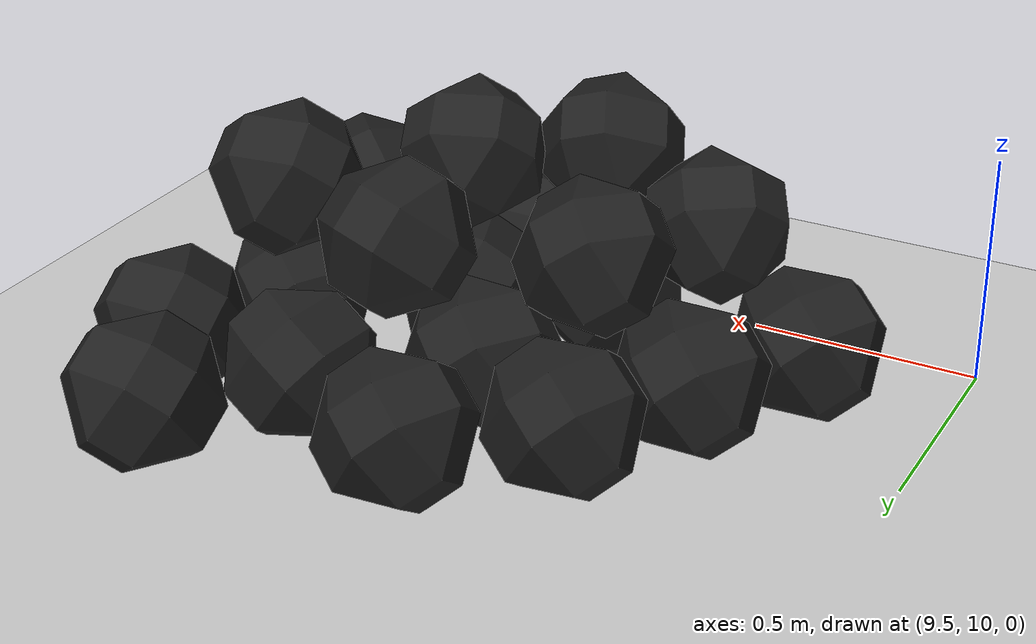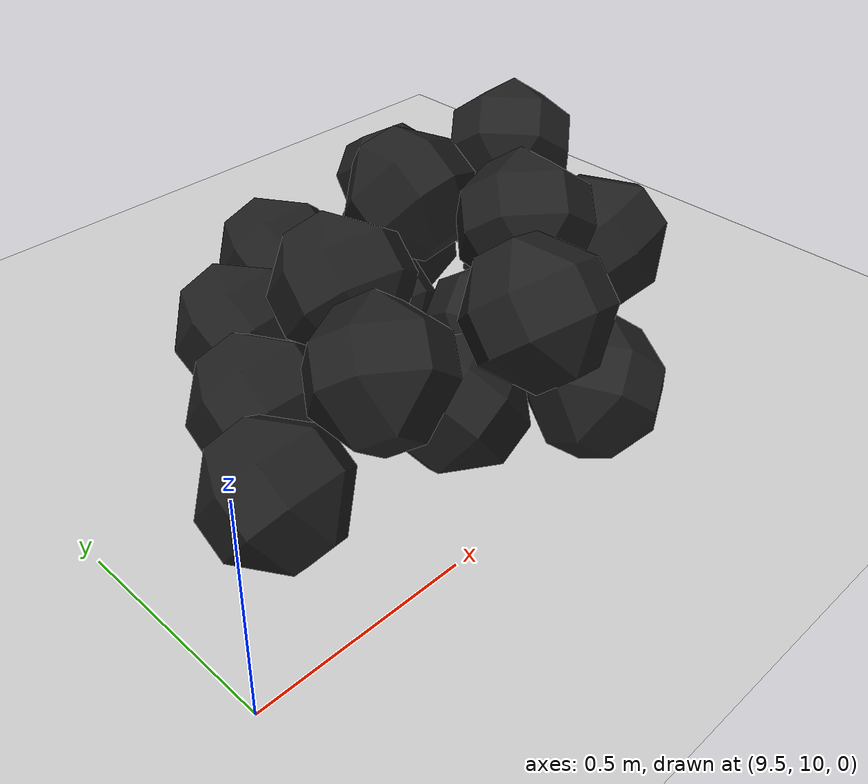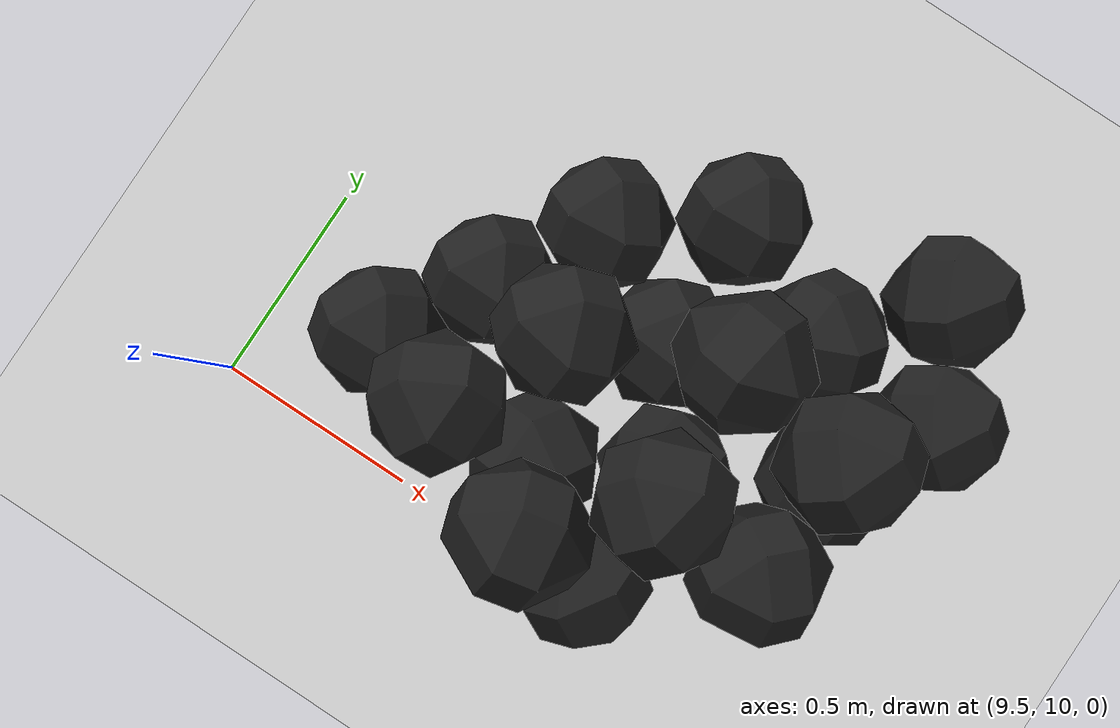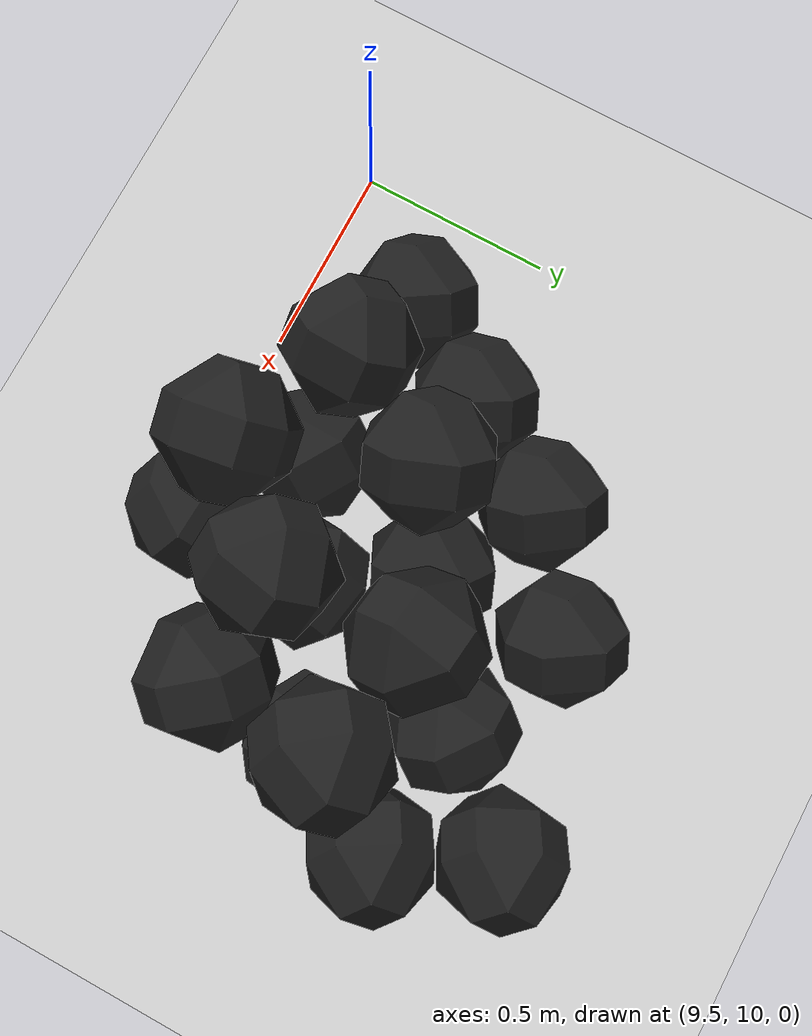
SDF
<sdf version="1.7">
 <world name="default">
  <model name="ground_plane">
   <static>1</static>
   <link name="link">
    <collision name="collision">
     <geometry><plane><normal>0 0 1</normal><size>100 100</size></plane></geometry>
     <surface><friction><ode><mu>100</mu><mu2>50</mu2></ode></friction></surface>
    </collision>
    <visual name="visual">
     <cast_shadows>0</cast_shadows>
     <geometry><plane><normal>0 0 1</normal><size>100 100</size></plane></geometry>
     <material>
      <script><uri>file://media/materials/scripts/gazebo.material</uri><name>Gazebo/Grey</name></script>
     </material>
    </visual>
   </link>
  </model>
  <model name="haoduomiantiaa_0">
   <link name="link_0">
    <inertial>
     <mass>0.2</mass>
     <inertia>
      <ixx>0.166667</ixx>
      <ixy>0</ixy>
      <ixz>0</ixz>
      <iyy>0.166667</iyy>
      <iyz>0</iyz>
      <izz>0.166667</izz>
     </inertia>
    </inertial>
    <visual name="visual">
     <geometry>
      <mesh>
       <uri>/home/lihaoyang/catkin_ws/src/pudong_gazebo/world/stl/haoduomianti.stl</uri>
       <scale>1 1 1</scale>
      </mesh>
     </geometry>
     <material>
      <lighting>1</lighting>
      <script><uri>file://media/materials/scripts/gazebo.material</uri><name>Gazebo/Black</name></script>
      <shader type="pixel"><normal_map>__default__</normal_map></shader>
      <ambient>0.3 0.3 0.3 1</ambient>
      <diffuse>0.7 0.7 0.7 1</diffuse>
      <specular>0.01 0.01 0.01 1</specular>
      <emissive>0 0 0 1</emissive>
     </material>
    </visual>
    <collision name="collision">
     <geometry>
      <mesh>
       <uri>/home/lihaoyang/catkin_ws/src/pudong_gazebo/world/stl/haoduomianti.stl</uri>
       <scale>1 1 1</scale>
      </mesh>
     </geometry>
     <surface>
      <friction>
       <ode><mu>1</mu><mu2>1</mu2><fdir1>0 0 0</fdir1><slip1>0</slip1><slip2>0</slip2></ode>
       <torsional>
        <coefficient>1</coefficient>
        <patch_radius>0</patch_radius>
        <surface_radius>0</surface_radius>
        <use_patch_radius>1</use_patch_radius>
        <ode><slip>0</slip></ode>
       </torsional>
      </friction>
      <bounce><restitution_coefficient>0</restitution_coefficient><threshold>1e+06</threshold></bounce>
      <contact>
       <collide_without_contact>0</collide_without_contact>
       <collide_without_contact_bitmask>1</collide_without_contact_bitmask>
       <collide_bitmask>1</collide_bitmask>
       <ode>
        <soft_cfm>0</soft_cfm>
        <soft_erp>0.2</soft_erp>
        <kp>1e+13</kp>
        <kd>1</kd>
        <max_vel>0.01</max_vel>
        <min_depth>0</min_depth>
       </ode>
       <bullet>
        <split_impulse>1</split_impulse>
        <split_impulse_penetration_threshold>-0.01</split_impulse_penetration_threshold>
        <soft_cfm>0</soft_cfm>
        <soft_erp>0.2</soft_erp>
        <kp>1e+13</kp>
        <kd>1</kd>
       </bullet>
      </contact>
     </surface>
    </collision>
   </link>
   <static>0</static>
   <pose>10.9836 10.8029 -0.115391 0.785395 -0.611805 -1.5585</pose>
  </model>
  <model name="haoduomiantiaa_6">
   <link name="link_0">
    <inertial>
     <mass>0.2</mass>
     <inertia>
      <ixx>0.166667</ixx>
      <ixy>0</ixy>
      <ixz>0</ixz>
      <iyy>0.166667</iyy>
      <iyz>0</iyz>
      <izz>0.166667</izz>
     </inertia>
    </inertial>
    <visual name="visual">
     <geometry>
      <mesh>
       <uri>/home/lihaoyang/catkin_ws/src/pudong_gazebo/world/stl/haoduomianti.stl</uri>
       <scale>1 1 1</scale>
      </mesh>
     </geometry>
     <material>
      <lighting>1</lighting>
      <script><uri>file://media/materials/scripts/gazebo.material</uri><name>Gazebo/Black</name></script>
      <shader type="pixel"><normal_map>__default__</normal_map></shader>
      <ambient>0.3 0.3 0.3 1</ambient>
      <diffuse>0.7 0.7 0.7 1</diffuse>
      <specular>0.01 0.01 0.01 1</specular>
      <emissive>0 0 0 1</emissive>
     </material>
    </visual>
    <collision name="collision">
     <geometry>
      <mesh>
       <uri>/home/lihaoyang/catkin_ws/src/pudong_gazebo/world/stl/haoduomianti.stl</uri>
       <scale>1 1 1</scale>
      </mesh>
     </geometry>
     <surface>
      <friction>
       <ode><mu>1</mu><mu2>1</mu2><fdir1>0 0 0</fdir1><slip1>0</slip1><slip2>0</slip2></ode>
       <torsional>
        <coefficient>1</coefficient>
        <patch_radius>0</patch_radius>
        <surface_radius>0</surface_radius>
        <use_patch_radius>1</use_patch_radius>
        <ode><slip>0</slip></ode>
       </torsional>
      </friction>
      <bounce><restitution_coefficient>0</restitution_coefficient><threshold>1e+06</threshold></bounce>
      <contact>
       <collide_without_contact>0</collide_without_contact>
       <collide_without_contact_bitmask>1</collide_without_contact_bitmask>
       <collide_bitmask>1</collide_bitmask>
       <ode>
        <soft_cfm>0</soft_cfm>
        <soft_erp>0.2</soft_erp>
        <kp>1e+13</kp>
        <kd>1</kd>
        <max_vel>0.01</max_vel>
        <min_depth>0</min_depth>
       </ode>
       <bullet>
        <split_impulse>1</split_impulse>
        <split_impulse_penetration_threshold>-0.01</split_impulse_penetration_threshold>
        <soft_cfm>0</soft_cfm>
        <soft_erp>0.2</soft_erp>
        <kp>1e+13</kp>
        <kd>1</kd>
       </bullet>
      </contact>
     </surface>
    </collision>
   </link>
   <static>0</static>
   <pose>10.3511 10.6223 -0.116656 0.78558 -0.614844 -0.602707</pose>
  </model>
  <model name="haoduomiantiaa_7">
   <link name="link_0">
    <inertial>
     <mass>0.2</mass>
     <inertia>
      <ixx>0.166667</ixx>
      <ixy>0</ixy>
      <ixz>0</ixz>
      <iyy>0.166667</iyy>
      <iyz>0</iyz>
      <izz>0.166667</izz>
     </inertia>
    </inertial>
    <visual name="visual">
     <geometry>
      <mesh>
       <uri>/home/lihaoyang/catkin_ws/src/pudong_gazebo/world/stl/haoduomianti.stl</uri>
       <scale>1 1 1</scale>
      </mesh>
     </geometry>
     <material>
      <lighting>1</lighting>
      <script><uri>file://media/materials/scripts/gazebo.material</uri><name>Gazebo/Black</name></script>
      <shader type="pixel"><normal_map>__default__</normal_map></shader>
      <ambient>0.3 0.3 0.3 1</ambient>
      <diffuse>0.7 0.7 0.7 1</diffuse>
      <specular>0.01 0.01 0.01 1</specular>
      <emissive>0 0 0 1</emissive>
     </material>
    </visual>
    <collision name="collision">
     <geometry>
      <mesh>
       <uri>/home/lihaoyang/catkin_ws/src/pudong_gazebo/world/stl/haoduomianti.stl</uri>
       <scale>1 1 1</scale>
      </mesh>
     </geometry>
     <surface>
      <friction>
       <ode><mu>1</mu><mu2>1</mu2><fdir1>0 0 0</fdir1><slip1>0</slip1><slip2>0</slip2></ode>
       <torsional>
        <coefficient>1</coefficient>
        <patch_radius>0</patch_radius>
        <surface_radius>0</surface_radius>
        <use_patch_radius>1</use_patch_radius>
        <ode><slip>0</slip></ode>
       </torsional>
      </friction>
      <bounce><restitution_coefficient>0</restitution_coefficient><threshold>1e+06</threshold></bounce>
      <contact>
       <collide_without_contact>0</collide_without_contact>
       <collide_without_contact_bitmask>1</collide_without_contact_bitmask>
       <collide_bitmask>1</collide_bitmask>
       <ode>
        <soft_cfm>0</soft_cfm>
        <soft_erp>0.2</soft_erp>
        <kp>1e+13</kp>
        <kd>1</kd>
        <max_vel>0.01</max_vel>
        <min_depth>0</min_depth>
       </ode>
       <bullet>
        <split_impulse>1</split_impulse>
        <split_impulse_penetration_threshold>-0.01</split_impulse_penetration_threshold>
        <soft_cfm>0</soft_cfm>
        <soft_erp>0.2</soft_erp>
        <kp>1e+13</kp>
        <kd>1</kd>
       </bullet>
      </contact>
     </surface>
    </collision>
   </link>
   <static>0</static>
   <pose>9.93722 10.5221 -0.116376 0.787891 -0.616668 -0.530396</pose>
  </model>
  <model name="haoduomiantiaa_11">
   <link name="link_0">
    <inertial>
     <mass>0.2</mass>
     <inertia>
      <ixx>0.166667</ixx>
      <ixy>0</ixy>
      <ixz>0</ixz>
      <iyy>0.166667</iyy>
      <iyz>0</iyz>
      <izz>0.166667</izz>
     </inertia>
    </inertial>
    <visual name="visual">
     <geometry>
      <mesh>
       <uri>/home/lihaoyang/catkin_ws/src/pudong_gazebo/world/stl/haoduomianti.stl</uri>
       <scale>1 1 1</scale>
      </mesh>
     </geometry>
     <material>
      <lighting>1</lighting>
      <script><uri>file://media/materials/scripts/gazebo.material</uri><name>Gazebo/Black</name></script>
      <shader type="pixel"><normal_map>__default__</normal_map></shader>
      <ambient>0.3 0.3 0.3 1</ambient>
      <diffuse>0.7 0.7 0.7 1</diffuse>
      <specular>0.01 0.01 0.01 1</specular>
      <emissive>0 0 0 1</emissive>
     </material>
    </visual>
    <collision name="collision">
     <geometry>
      <mesh>
       <uri>/home/lihaoyang/catkin_ws/src/pudong_gazebo/world/stl/haoduomianti.stl</uri>
       <scale>1 1 1</scale>
      </mesh>
     </geometry>
     <surface>
      <friction>
       <ode><mu>1</mu><mu2>1</mu2><fdir1>0 0 0</fdir1><slip1>0</slip1><slip2>0</slip2></ode>
       <torsional>
        <coefficient>1</coefficient>
        <patch_radius>0</patch_radius>
        <surface_radius>0</surface_radius>
        <use_patch_radius>1</use_patch_radius>
        <ode><slip>0</slip></ode>
       </torsional>
      </friction>
      <bounce><restitution_coefficient>0</restitution_coefficient><threshold>1e+06</threshold></bounce>
      <contact>
       <collide_without_contact>0</collide_without_contact>
       <collide_without_contact_bitmask>1</collide_without_contact_bitmask>
       <collide_bitmask>1</collide_bitmask>
       <ode>
        <soft_cfm>0</soft_cfm>
        <soft_erp>0.2</soft_erp>
        <kp>1e+13</kp>
        <kd>1</kd>
        <max_vel>0.01</max_vel>
        <min_depth>0</min_depth>
       </ode>
       <bullet>
        <split_impulse>1</split_impulse>
        <split_impulse_penetration_threshold>-0.01</split_impulse_penetration_threshold>
        <soft_cfm>0</soft_cfm>
        <soft_erp>0.2</soft_erp>
        <kp>1e+13</kp>
        <kd>1</kd>
       </bullet>
      </contact>
     </surface>
    </collision>
   </link>
   <static>0</static>
   <pose>10.8568 11.0678 -0.115068 0.792386 -0.620348 -1.65447</pose>
  </model>
  <model name="haoduomiantiaa_21">
   <link name="link_0">
    <inertial>
     <mass>0.2</mass>
     <inertia>
      <ixx>0.166667</ixx>
      <ixy>0</ixy>
      <ixz>0</ixz>
      <iyy>0.166667</iyy>
      <iyz>0</iyz>
      <izz>0.166667</izz>
     </inertia>
    </inertial>
    <visual name="visual">
     <geometry>
      <mesh>
       <uri>/home/lihaoyang/catkin_ws/src/pudong_gazebo/world/stl/haoduomianti.stl</uri>
       <scale>1 1 1</scale>
      </mesh>
     </geometry>
     <material>
      <lighting>1</lighting>
      <script><uri>file://media/materials/scripts/gazebo.material</uri><name>Gazebo/Black</name></script>
      <shader type="pixel"><normal_map>__default__</normal_map></shader>
      <ambient>0.3 0.3 0.3 1</ambient>
      <diffuse>0.7 0.7 0.7 1</diffuse>
      <specular>0.01 0.01 0.01 1</specular>
      <emissive>0 0 0 1</emissive>
     </material>
    </visual>
    <collision name="collision">
     <geometry>
      <mesh>
       <uri>/home/lihaoyang/catkin_ws/src/pudong_gazebo/world/stl/haoduomianti.stl</uri>
       <scale>1 1 1</scale>
      </mesh>
     </geometry>
     <surface>
      <friction>
       <ode><mu>1</mu><mu2>1</mu2><fdir1>0 0 0</fdir1><slip1>0</slip1><slip2>0</slip2></ode>
       <torsional>
        <coefficient>1</coefficient>
        <patch_radius>0</patch_radius>
        <surface_radius>0</surface_radius>
        <use_patch_radius>1</use_patch_radius>
        <ode><slip>0</slip></ode>
       </torsional>
      </friction>
      <bounce><restitution_coefficient>0</restitution_coefficient><threshold>1e+06</threshold></bounce>
      <contact>
       <collide_without_contact>0</collide_without_contact>
       <collide_without_contact_bitmask>1</collide_without_contact_bitmask>
       <collide_bitmask>1</collide_bitmask>
       <ode>
        <soft_cfm>0</soft_cfm>
        <soft_erp>0.2</soft_erp>
        <kp>1e+13</kp>
        <kd>1</kd>
        <max_vel>0.01</max_vel>
        <min_depth>0</min_depth>
       </ode>
       <bullet>
        <split_impulse>1</split_impulse>
        <split_impulse_penetration_threshold>-0.01</split_impulse_penetration_threshold>
        <soft_cfm>0</soft_cfm>
        <soft_erp>0.2</soft_erp>
        <kp>1e+13</kp>
        <kd>1</kd>
       </bullet>
      </contact>
     </surface>
    </collision>
   </link>
   <static>0</static>
   <pose>10.5099 10.3715 -0.114905 0.770932 -0.622212 -1.7354</pose>
  </model>
  <model name="haoduomiantiaa_26">
   <link name="link_0">
    <inertial>
     <mass>0.2</mass>
     <inertia>
      <ixx>0.166667</ixx>
      <ixy>0</ixy>
      <ixz>0</ixz>
      <iyy>0.166667</iyy>
      <iyz>0</iyz>
      <izz>0.166667</izz>
     </inertia>
    </inertial>
    <visual name="visual">
     <geometry>
      <mesh>
       <uri>/home/lihaoyang/catkin_ws/src/pudong_gazebo/world/stl/haoduomianti.stl</uri>
       <scale>1 1 1</scale>
      </mesh>
     </geometry>
     <material>
      <lighting>1</lighting>
      <script><uri>file://media/materials/scripts/gazebo.material</uri><name>Gazebo/Black</name></script>
      <shader type="pixel"><normal_map>__default__</normal_map></shader>
      <ambient>0.3 0.3 0.3 1</ambient>
      <diffuse>0.7 0.7 0.7 1</diffuse>
      <specular>0.01 0.01 0.01 1</specular>
      <emissive>0 0 0 1</emissive>
     </material>
    </visual>
    <collision name="collision">
     <geometry>
      <mesh>
       <uri>/home/lihaoyang/catkin_ws/src/pudong_gazebo/world/stl/haoduomianti.stl</uri>
       <scale>1 1 1</scale>
      </mesh>
     </geometry>
     <surface>
      <friction>
       <ode><mu>1</mu><mu2>1</mu2><fdir1>0 0 0</fdir1><slip1>0</slip1><slip2>0</slip2></ode>
       <torsional>
        <coefficient>1</coefficient>
        <patch_radius>0</patch_radius>
        <surface_radius>0</surface_radius>
        <use_patch_radius>1</use_patch_radius>
        <ode><slip>0</slip></ode>
       </torsional>
      </friction>
      <bounce><restitution_coefficient>0</restitution_coefficient><threshold>1e+06</threshold></bounce>
      <contact>
       <collide_without_contact>0</collide_without_contact>
       <collide_without_contact_bitmask>1</collide_without_contact_bitmask>
       <collide_bitmask>1</collide_bitmask>
       <ode>
        <soft_cfm>0</soft_cfm>
        <soft_erp>0.2</soft_erp>
        <kp>1e+13</kp>
        <kd>1</kd>
        <max_vel>0.01</max_vel>
        <min_depth>0</min_depth>
       </ode>
       <bullet>
        <split_impulse>1</split_impulse>
        <split_impulse_penetration_threshold>-0.01</split_impulse_penetration_threshold>
        <soft_cfm>0</soft_cfm>
        <soft_erp>0.2</soft_erp>
        <kp>1e+13</kp>
        <kd>1</kd>
       </bullet>
      </contact>
     </surface>
    </collision>
   </link>
   <static>0</static>
   <pose>10.8266 10.3619 0.039009 0.64722 -0.387103 -2.40719</pose>
  </model>
  <model name="haoduomiantiaa_28">
   <link name="link_0">
    <inertial>
     <mass>0.2</mass>
     <inertia>
      <ixx>0.166667</ixx>
      <ixy>0</ixy>
      <ixz>0</ixz>
      <iyy>0.166667</iyy>
      <iyz>0</iyz>
      <izz>0.166667</izz>
     </inertia>
    </inertial>
    <visual name="visual">
     <geometry>
      <mesh>
       <uri>/home/lihaoyang/catkin_ws/src/pudong_gazebo/world/stl/haoduomianti.stl</uri>
       <scale>1 1 1</scale>
      </mesh>
     </geometry>
     <material>
      <lighting>1</lighting>
      <script><uri>file://media/materials/scripts/gazebo.material</uri><name>Gazebo/Black</name></script>
      <shader type="pixel"><normal_map>__default__</normal_map></shader>
      <ambient>0.3 0.3 0.3 1</ambient>
      <diffuse>0.7 0.7 0.7 1</diffuse>
      <specular>0.01 0.01 0.01 1</specular>
      <emissive>0 0 0 1</emissive>
     </material>
    </visual>
    <collision name="collision">
     <geometry>
      <mesh>
       <uri>/home/lihaoyang/catkin_ws/src/pudong_gazebo/world/stl/haoduomianti.stl</uri>
       <scale>1 1 1</scale>
      </mesh>
     </geometry>
     <surface>
      <friction>
       <ode><mu>1</mu><mu2>1</mu2><fdir1>0 0 0</fdir1><slip1>0</slip1><slip2>0</slip2></ode>
       <torsional>
        <coefficient>1</coefficient>
        <patch_radius>0</patch_radius>
        <surface_radius>0</surface_radius>
        <use_patch_radius>1</use_patch_radius>
        <ode><slip>0</slip></ode>
       </torsional>
      </friction>
      <bounce><restitution_coefficient>0</restitution_coefficient><threshold>1e+06</threshold></bounce>
      <contact>
       <collide_without_contact>0</collide_without_contact>
       <collide_without_contact_bitmask>1</collide_without_contact_bitmask>
       <collide_bitmask>1</collide_bitmask>
       <ode>
        <soft_cfm>0</soft_cfm>
        <soft_erp>0.2</soft_erp>
        <kp>1e+13</kp>
        <kd>1</kd>
        <max_vel>0.01</max_vel>
        <min_depth>0</min_depth>
       </ode>
       <bullet>
        <split_impulse>1</split_impulse>
        <split_impulse_penetration_threshold>-0.01</split_impulse_penetration_threshold>
        <soft_cfm>0</soft_cfm>
        <soft_erp>0.2</soft_erp>
        <kp>1e+13</kp>
        <kd>1</kd>
       </bullet>
      </contact>
     </surface>
    </collision>
   </link>
   <static>0</static>
   <pose>10.3483 10.9628 -0.115457 0.785509 -0.615644 -2.56296</pose>
  </model>
  <model name="haoduomiantiaa_38">
   <link name="link_0">
    <inertial>
     <mass>0.2</mass>
     <inertia>
      <ixx>0.166667</ixx>
      <ixy>0</ixy>
      <ixz>0</ixz>
      <iyy>0.166667</iyy>
      <iyz>0</iyz>
      <izz>0.166667</izz>
     </inertia>
    </inertial>
    <visual name="visual">
     <geometry>
      <mesh>
       <uri>/home/lihaoyang/catkin_ws/src/pudong_gazebo/world/stl/haoduomianti.stl</uri>
       <scale>1 1 1</scale>
      </mesh>
     </geometry>
     <material>
      <lighting>1</lighting>
      <script><uri>file://media/materials/scripts/gazebo.material</uri><name>Gazebo/Black</name></script>
      <shader type="pixel"><normal_map>__default__</normal_map></shader>
      <ambient>0.3 0.3 0.3 1</ambient>
      <diffuse>0.7 0.7 0.7 1</diffuse>
      <specular>0.01 0.01 0.01 1</specular>
      <emissive>0 0 0 1</emissive>
     </material>
    </visual>
    <collision name="collision">
     <geometry>
      <mesh>
       <uri>/home/lihaoyang/catkin_ws/src/pudong_gazebo/world/stl/haoduomianti.stl</uri>
       <scale>1 1 1</scale>
      </mesh>
     </geometry>
     <surface>
      <friction>
       <ode><mu>1</mu><mu2>1</mu2><fdir1>0 0 0</fdir1><slip1>0</slip1><slip2>0</slip2></ode>
       <torsional>
        <coefficient>1</coefficient>
        <patch_radius>0</patch_radius>
        <surface_radius>0</surface_radius>
        <use_patch_radius>1</use_patch_radius>
        <ode><slip>0</slip></ode>
       </torsional>
      </friction>
      <bounce><restitution_coefficient>0</restitution_coefficient><threshold>1e+06</threshold></bounce>
      <contact>
       <collide_without_contact>0</collide_without_contact>
       <collide_without_contact_bitmask>1</collide_without_contact_bitmask>
       <collide_bitmask>1</collide_bitmask>
       <ode>
        <soft_cfm>0</soft_cfm>
        <soft_erp>0.2</soft_erp>
        <kp>1e+13</kp>
        <kd>1</kd>
        <max_vel>0.01</max_vel>
        <min_depth>0</min_depth>
       </ode>
       <bullet>
        <split_impulse>1</split_impulse>
        <split_impulse_penetration_threshold>-0.01</split_impulse_penetration_threshold>
        <soft_cfm>0</soft_cfm>
        <soft_erp>0.2</soft_erp>
        <kp>1e+13</kp>
        <kd>1</kd>
       </bullet>
      </contact>
     </surface>
    </collision>
   </link>
   <static>0</static>
   <pose>10.5383 10.3154 0.175124 0.793569 -0.603399 2.95752</pose>
  </model>
  <model name="haoduomiantiaa_51">
   <link name="link_0">
    <inertial>
     <mass>0.2</mass>
     <inertia>
      <ixx>0.166667</ixx>
      <ixy>0</ixy>
      <ixz>0</ixz>
      <iyy>0.166667</iyy>
      <iyz>0</iyz>
      <izz>0.166667</izz>
     </inertia>
    </inertial>
    <visual name="visual">
     <geometry>
      <mesh>
       <uri>/home/lihaoyang/catkin_ws/src/pudong_gazebo/world/stl/haoduomianti.stl</uri>
       <scale>1 1 1</scale>
      </mesh>
     </geometry>
     <material>
      <lighting>1</lighting>
      <script><uri>file://media/materials/scripts/gazebo.material</uri><name>Gazebo/Black</name></script>
      <shader type="pixel"><normal_map>__default__</normal_map></shader>
      <ambient>0.3 0.3 0.3 1</ambient>
      <diffuse>0.7 0.7 0.7 1</diffuse>
      <specular>0.01 0.01 0.01 1</specular>
      <emissive>0 0 0 1</emissive>
     </material>
    </visual>
    <collision name="collision">
     <geometry>
      <mesh>
       <uri>/home/lihaoyang/catkin_ws/src/pudong_gazebo/world/stl/haoduomianti.stl</uri>
       <scale>1 1 1</scale>
      </mesh>
     </geometry>
     <surface>
      <friction>
       <ode><mu>1</mu><mu2>1</mu2><fdir1>0 0 0</fdir1><slip1>0</slip1><slip2>0</slip2></ode>
       <torsional>
        <coefficient>1</coefficient>
        <patch_radius>0</patch_radius>
        <surface_radius>0</surface_radius>
        <use_patch_radius>1</use_patch_radius>
        <ode><slip>0</slip></ode>
       </torsional>
      </friction>
      <bounce><restitution_coefficient>0</restitution_coefficient><threshold>1e+06</threshold></bounce>
      <contact>
       <collide_without_contact>0</collide_without_contact>
       <collide_without_contact_bitmask>1</collide_without_contact_bitmask>
       <collide_bitmask>1</collide_bitmask>
       <ode>
        <soft_cfm>0</soft_cfm>
        <soft_erp>0.2</soft_erp>
        <kp>1e+13</kp>
        <kd>1</kd>
        <max_vel>0.01</max_vel>
        <min_depth>0</min_depth>
       </ode>
       <bullet>
        <split_impulse>1</split_impulse>
        <split_impulse_penetration_threshold>-0.01</split_impulse_penetration_threshold>
        <soft_cfm>0</soft_cfm>
        <soft_erp>0.2</soft_erp>
        <kp>1e+13</kp>
        <kd>1</kd>
       </bullet>
      </contact>
     </surface>
    </collision>
   </link>
   <static>0</static>
   <pose>10.2437 10.2334 -0.115477 0.785353 -0.61549 2.06822</pose>
  </model>
  <model name="haoduomiantiaa_67">
   <link name="link_0">
    <inertial>
     <mass>0.2</mass>
     <inertia>
      <ixx>0.166667</ixx>
      <ixy>0</ixy>
      <ixz>0</ixz>
      <iyy>0.166667</iyy>
      <iyz>0</iyz>
      <izz>0.166667</izz>
     </inertia>
    </inertial>
    <visual name="visual">
     <geometry>
      <mesh>
       <uri>/home/lihaoyang/catkin_ws/src/pudong_gazebo/world/stl/haoduomianti.stl</uri>
       <scale>1 1 1</scale>
      </mesh>
     </geometry>
     <material>
      <lighting>1</lighting>
      <script><uri>file://media/materials/scripts/gazebo.material</uri><name>Gazebo/Black</name></script>
      <shader type="pixel"><normal_map>__default__</normal_map></shader>
      <ambient>0.3 0.3 0.3 1</ambient>
      <diffuse>0.7 0.7 0.7 1</diffuse>
      <specular>0.01 0.01 0.01 1</specular>
      <emissive>0 0 0 1</emissive>
     </material>
    </visual>
    <collision name="collision">
     <geometry>
      <mesh>
       <uri>/home/lihaoyang/catkin_ws/src/pudong_gazebo/world/stl/haoduomianti.stl</uri>
       <scale>1 1 1</scale>
      </mesh>
     </geometry>
     <surface>
      <friction>
       <ode><mu>1</mu><mu2>1</mu2><fdir1>0 0 0</fdir1><slip1>0</slip1><slip2>0</slip2></ode>
       <torsional>
        <coefficient>1</coefficient>
        <patch_radius>0</patch_radius>
        <surface_radius>0</surface_radius>
        <use_patch_radius>1</use_patch_radius>
        <ode><slip>0</slip></ode>
       </torsional>
      </friction>
      <bounce><restitution_coefficient>0</restitution_coefficient><threshold>1e+06</threshold></bounce>
      <contact>
       <collide_without_contact>0</collide_without_contact>
       <collide_without_contact_bitmask>1</collide_without_contact_bitmask>
       <collide_bitmask>1</collide_bitmask>
       <ode>
        <soft_cfm>0</soft_cfm>
        <soft_erp>0.2</soft_erp>
        <kp>1e+13</kp>
        <kd>1</kd>
        <max_vel>0.01</max_vel>
        <min_depth>0</min_depth>
       </ode>
       <bullet>
        <split_impulse>1</split_impulse>
        <split_impulse_penetration_threshold>-0.01</split_impulse_penetration_threshold>
        <soft_cfm>0</soft_cfm>
        <soft_erp>0.2</soft_erp>
        <kp>1e+13</kp>
        <kd>1</kd>
       </bullet>
      </contact>
     </surface>
    </collision>
   </link>
   <static>0</static>
   <pose>10.1661 10.5192 0.094897 0.777917 -0.68078 1.41246</pose>
  </model>
  <model name="haoduomiantiaa_75">
   <link name="link_0">
    <inertial>
     <mass>0.2</mass>
     <inertia>
      <ixx>0.166667</ixx>
      <ixy>0</ixy>
      <ixz>0</ixz>
      <iyy>0.166667</iyy>
      <iyz>0</iyz>
      <izz>0.166667</izz>
     </inertia>
    </inertial>
    <visual name="visual">
     <geometry>
      <mesh>
       <uri>/home/lihaoyang/catkin_ws/src/pudong_gazebo/world/stl/haoduomianti.stl</uri>
       <scale>1 1 1</scale>
      </mesh>
     </geometry>
     <material>
      <lighting>1</lighting>
      <script><uri>file://media/materials/scripts/gazebo.material</uri><name>Gazebo/Black</name></script>
      <shader type="pixel"><normal_map>__default__</normal_map></shader>
      <ambient>0.3 0.3 0.3 1</ambient>
      <diffuse>0.7 0.7 0.7 1</diffuse>
      <specular>0.01 0.01 0.01 1</specular>
      <emissive>0 0 0 1</emissive>
     </material>
    </visual>
    <collision name="collision">
     <geometry>
      <mesh>
       <uri>/home/lihaoyang/catkin_ws/src/pudong_gazebo/world/stl/haoduomianti.stl</uri>
       <scale>1 1 1</scale>
      </mesh>
     </geometry>
     <surface>
      <friction>
       <ode><mu>1</mu><mu2>1</mu2><fdir1>0 0 0</fdir1><slip1>0</slip1><slip2>0</slip2></ode>
       <torsional>
        <coefficient>1</coefficient>
        <patch_radius>0</patch_radius>
        <surface_radius>0</surface_radius>
        <use_patch_radius>1</use_patch_radius>
        <ode><slip>0</slip></ode>
       </torsional>
      </friction>
      <bounce><restitution_coefficient>0</restitution_coefficient><threshold>1e+06</threshold></bounce>
      <contact>
       <collide_without_contact>0</collide_without_contact>
       <collide_without_contact_bitmask>1</collide_without_contact_bitmask>
       <collide_bitmask>1</collide_bitmask>
       <ode>
        <soft_cfm>0</soft_cfm>
        <soft_erp>0.2</soft_erp>
        <kp>1e+13</kp>
        <kd>1</kd>
        <max_vel>0.01</max_vel>
        <min_depth>0</min_depth>
       </ode>
       <bullet>
        <split_impulse>1</split_impulse>
        <split_impulse_penetration_threshold>-0.01</split_impulse_penetration_threshold>
        <soft_cfm>0</soft_cfm>
        <soft_erp>0.2</soft_erp>
        <kp>1e+13</kp>
        <kd>1</kd>
       </bullet>
      </contact>
     </surface>
    </collision>
   </link>
   <static>0</static>
   <pose>10.3996 10.1234 0.157708 0.427558 -0.800917 1.41748</pose>
  </model>
  <model name="haoduomiantiaa_84">
   <link name="link_0">
    <inertial>
     <mass>0.2</mass>
     <inertia>
      <ixx>0.166667</ixx>
      <ixy>0</ixy>
      <ixz>0</ixz>
      <iyy>0.166667</iyy>
      <iyz>0</iyz>
      <izz>0.166667</izz>
     </inertia>
    </inertial>
    <visual name="visual">
     <geometry>
      <mesh>
       <uri>/home/lihaoyang/catkin_ws/src/pudong_gazebo/world/stl/haoduomianti.stl</uri>
       <scale>1 1 1</scale>
      </mesh>
     </geometry>
     <material>
      <lighting>1</lighting>
      <script><uri>file://media/materials/scripts/gazebo.material</uri><name>Gazebo/Black</name></script>
      <shader type="pixel"><normal_map>__default__</normal_map></shader>
      <ambient>0.3 0.3 0.3 1</ambient>
      <diffuse>0.7 0.7 0.7 1</diffuse>
      <specular>0.01 0.01 0.01 1</specular>
      <emissive>0 0 0 1</emissive>
     </material>
    </visual>
    <collision name="collision">
     <geometry>
      <mesh>
       <uri>/home/lihaoyang/catkin_ws/src/pudong_gazebo/world/stl/haoduomianti.stl</uri>
       <scale>1 1 1</scale>
      </mesh>
     </geometry>
     <surface>
      <friction>
       <ode><mu>1</mu><mu2>1</mu2><fdir1>0 0 0</fdir1><slip1>0</slip1><slip2>0</slip2></ode>
       <torsional>
        <coefficient>1</coefficient>
        <patch_radius>0</patch_radius>
        <surface_radius>0</surface_radius>
        <use_patch_radius>1</use_patch_radius>
        <ode><slip>0</slip></ode>
       </torsional>
      </friction>
      <bounce><restitution_coefficient>0</restitution_coefficient><threshold>1e+06</threshold></bounce>
      <contact>
       <collide_without_contact>0</collide_without_contact>
       <collide_without_contact_bitmask>1</collide_without_contact_bitmask>
       <collide_bitmask>1</collide_bitmask>
       <ode>
        <soft_cfm>0</soft_cfm>
        <soft_erp>0.2</soft_erp>
        <kp>1e+13</kp>
        <kd>1</kd>
        <max_vel>0.01</max_vel>
        <min_depth>0</min_depth>
       </ode>
       <bullet>
        <split_impulse>1</split_impulse>
        <split_impulse_penetration_threshold>-0.01</split_impulse_penetration_threshold>
        <soft_cfm>0</soft_cfm>
        <soft_erp>0.2</soft_erp>
        <kp>1e+13</kp>
        <kd>1</kd>
       </bullet>
      </contact>
     </surface>
    </collision>
   </link>
   <static>0</static>
   <pose>9.99784 10.2302 0.081604 0.781433 -0.68023 3.11729</pose>
  </model>
  <model name="haoduomiantiaa_112">
   <link name="link_0">
    <inertial>
     <mass>0.2</mass>
     <inertia>
      <ixx>0.166667</ixx>
      <ixy>0</ixy>
      <ixz>0</ixz>
      <iyy>0.166667</iyy>
      <iyz>0</iyz>
      <izz>0.166667</izz>
     </inertia>
    </inertial>
    <visual name="visual">
     <geometry>
      <mesh>
       <uri>/home/lihaoyang/catkin_ws/src/pudong_gazebo/world/stl/haoduomianti.stl</uri>
       <scale>1 1 1</scale>
      </mesh>
     </geometry>
     <material>
      <lighting>1</lighting>
      <script><uri>file://media/materials/scripts/gazebo.material</uri><name>Gazebo/Black</name></script>
      <shader type="pixel"><normal_map>__default__</normal_map></shader>
      <ambient>0.3 0.3 0.3 1</ambient>
      <diffuse>0.7 0.7 0.7 1</diffuse>
      <specular>0.01 0.01 0.01 1</specular>
      <emissive>0 0 0 1</emissive>
     </material>
    </visual>
    <collision name="collision">
     <geometry>
      <mesh>
       <uri>/home/lihaoyang/catkin_ws/src/pudong_gazebo/world/stl/haoduomianti.stl</uri>
       <scale>1 1 1</scale>
      </mesh>
     </geometry>
     <surface>
      <friction>
       <ode><mu>1</mu><mu2>1</mu2><fdir1>0 0 0</fdir1><slip1>0</slip1><slip2>0</slip2></ode>
       <torsional>
        <coefficient>1</coefficient>
        <patch_radius>0</patch_radius>
        <surface_radius>0</surface_radius>
        <use_patch_radius>1</use_patch_radius>
        <ode><slip>0</slip></ode>
       </torsional>
      </friction>
      <bounce><restitution_coefficient>0</restitution_coefficient><threshold>1e+06</threshold></bounce>
      <contact>
       <collide_without_contact>0</collide_without_contact>
       <collide_without_contact_bitmask>1</collide_without_contact_bitmask>
       <collide_bitmask>1</collide_bitmask>
       <ode>
        <soft_cfm>0</soft_cfm>
        <soft_erp>0.2</soft_erp>
        <kp>1e+13</kp>
        <kd>1</kd>
        <max_vel>0.01</max_vel>
        <min_depth>0</min_depth>
       </ode>
       <bullet>
        <split_impulse>1</split_impulse>
        <split_impulse_penetration_threshold>-0.01</split_impulse_penetration_threshold>
        <soft_cfm>0</soft_cfm>
        <soft_erp>0.2</soft_erp>
        <kp>1e+13</kp>
        <kd>1</kd>
       </bullet>
      </contact>
     </surface>
    </collision>
   </link>
   <static>0</static>
   <pose>10.496 10.0689 -0.112191 0.82679 -0.635456 0.446205</pose>
  </model>
  <model name="haoduomiantiaa_113">
   <link name="link_0">
    <inertial>
     <mass>0.2</mass>
     <inertia>
      <ixx>0.166667</ixx>
      <ixy>0</ixy>
      <ixz>0</ixz>
      <iyy>0.166667</iyy>
      <iyz>0</iyz>
      <izz>0.166667</izz>
     </inertia>
    </inertial>
    <visual name="visual">
     <geometry>
      <mesh>
       <uri>/home/lihaoyang/catkin_ws/src/pudong_gazebo/world/stl/haoduomianti.stl</uri>
       <scale>1 1 1</scale>
      </mesh>
     </geometry>
     <material>
      <lighting>1</lighting>
      <script><uri>file://media/materials/scripts/gazebo.material</uri><name>Gazebo/Black</name></script>
      <shader type="pixel"><normal_map>__default__</normal_map></shader>
      <ambient>0.3 0.3 0.3 1</ambient>
      <diffuse>0.7 0.7 0.7 1</diffuse>
      <specular>0.01 0.01 0.01 1</specular>
      <emissive>0 0 0 1</emissive>
     </material>
    </visual>
    <collision name="collision">
     <geometry>
      <mesh>
       <uri>/home/lihaoyang/catkin_ws/src/pudong_gazebo/world/stl/haoduomianti.stl</uri>
       <scale>1 1 1</scale>
      </mesh>
     </geometry>
     <surface>
      <friction>
       <ode><mu>1</mu><mu2>1</mu2><fdir1>0 0 0</fdir1><slip1>0</slip1><slip2>0</slip2></ode>
       <torsional>
        <coefficient>1</coefficient>
        <patch_radius>0</patch_radius>
        <surface_radius>0</surface_radius>
        <use_patch_radius>1</use_patch_radius>
        <ode><slip>0</slip></ode>
       </torsional>
      </friction>
      <bounce><restitution_coefficient>0</restitution_coefficient><threshold>1e+06</threshold></bounce>
      <contact>
       <collide_without_contact>0</collide_without_contact>
       <collide_without_contact_bitmask>1</collide_without_contact_bitmask>
       <collide_bitmask>1</collide_bitmask>
       <ode>
        <soft_cfm>0</soft_cfm>
        <soft_erp>0.2</soft_erp>
        <kp>1e+13</kp>
        <kd>1</kd>
        <max_vel>0.01</max_vel>
        <min_depth>0</min_depth>
       </ode>
       <bullet>
        <split_impulse>1</split_impulse>
        <split_impulse_penetration_threshold>-0.01</split_impulse_penetration_threshold>
        <soft_cfm>0</soft_cfm>
        <soft_erp>0.2</soft_erp>
        <kp>1e+13</kp>
        <kd>1</kd>
       </bullet>
      </contact>
     </surface>
    </collision>
   </link>
   <static>0</static>
   <pose>9.7841 10.28 -0.114764 0.78751 -0.616332 -0.480922</pose>
  </model>
  <model name="haoduomiantiaa_115">
   <link name="link_0">
    <inertial>
     <mass>0.2</mass>
     <inertia>
      <ixx>0.166667</ixx>
      <ixy>0</ixy>
      <ixz>0</ixz>
      <iyy>0.166667</iyy>
      <iyz>0</iyz>
      <izz>0.166667</izz>
     </inertia>
    </inertial>
    <visual name="visual">
     <geometry>
      <mesh>
       <uri>/home/lihaoyang/catkin_ws/src/pudong_gazebo/world/stl/haoduomianti.stl</uri>
       <scale>1 1 1</scale>
      </mesh>
     </geometry>
     <material>
      <lighting>1</lighting>
      <script><uri>file://media/materials/scripts/gazebo.material</uri><name>Gazebo/Black</name></script>
      <shader type="pixel"><normal_map>__default__</normal_map></shader>
      <ambient>0.3 0.3 0.3 1</ambient>
      <diffuse>0.7 0.7 0.7 1</diffuse>
      <specular>0.01 0.01 0.01 1</specular>
      <emissive>0 0 0 1</emissive>
     </material>
    </visual>
    <collision name="collision">
     <geometry>
      <mesh>
       <uri>/home/lihaoyang/catkin_ws/src/pudong_gazebo/world/stl/haoduomianti.stl</uri>
       <scale>1 1 1</scale>
      </mesh>
     </geometry>
     <surface>
      <friction>
       <ode><mu>1</mu><mu2>1</mu2><fdir1>0 0 0</fdir1><slip1>0</slip1><slip2>0</slip2></ode>
       <torsional>
        <coefficient>1</coefficient>
        <patch_radius>0</patch_radius>
        <surface_radius>0</surface_radius>
        <use_patch_radius>1</use_patch_radius>
        <ode><slip>0</slip></ode>
       </torsional>
      </friction>
      <bounce><restitution_coefficient>0</restitution_coefficient><threshold>1e+06</threshold></bounce>
      <contact>
       <collide_without_contact>0</collide_without_contact>
       <collide_without_contact_bitmask>1</collide_without_contact_bitmask>
       <collide_bitmask>1</collide_bitmask>
       <ode>
        <soft_cfm>0</soft_cfm>
        <soft_erp>0.2</soft_erp>
        <kp>1e+13</kp>
        <kd>1</kd>
        <max_vel>0.01</max_vel>
        <min_depth>0</min_depth>
       </ode>
       <bullet>
        <split_impulse>1</split_impulse>
        <split_impulse_penetration_threshold>-0.01</split_impulse_penetration_threshold>
        <soft_cfm>0</soft_cfm>
        <soft_erp>0.2</soft_erp>
        <kp>1e+13</kp>
        <kd>1</kd>
       </bullet>
      </contact>
     </surface>
    </collision>
   </link>
   <static>0</static>
   <pose>10.8147 10.5999 0.170101 0.788744 -0.604436 2.76267</pose>
  </model>
  <model name="haoduomiantiaa_121">
   <link name="link_0">
    <inertial>
     <mass>0.2</mass>
     <inertia>
      <ixx>0.166667</ixx>
      <ixy>0</ixy>
      <ixz>0</ixz>
      <iyy>0.166667</iyy>
      <iyz>0</iyz>
      <izz>0.166667</izz>
     </inertia>
    </inertial>
    <visual name="visual">
     <geometry>
      <mesh>
       <uri>/home/lihaoyang/catkin_ws/src/pudong_gazebo/world/stl/haoduomianti.stl</uri>
       <scale>1 1 1</scale>
      </mesh>
     </geometry>
     <material>
      <lighting>1</lighting>
      <script><uri>file://media/materials/scripts/gazebo.material</uri><name>Gazebo/Black</name></script>
      <shader type="pixel"><normal_map>__default__</normal_map></shader>
      <ambient>0.3 0.3 0.3 1</ambient>
      <diffuse>0.7 0.7 0.7 1</diffuse>
      <specular>0.01 0.01 0.01 1</specular>
      <emissive>0 0 0 1</emissive>
     </material>
    </visual>
    <collision name="collision">
     <geometry>
      <mesh>
       <uri>/home/lihaoyang/catkin_ws/src/pudong_gazebo/world/stl/haoduomianti.stl</uri>
       <scale>1 1 1</scale>
      </mesh>
     </geometry>
     <surface>
      <friction>
       <ode><mu>1</mu><mu2>1</mu2><fdir1>0 0 0</fdir1><slip1>0</slip1><slip2>0</slip2></ode>
       <torsional>
        <coefficient>1</coefficient>
        <patch_radius>0</patch_radius>
        <surface_radius>0</surface_radius>
        <use_patch_radius>1</use_patch_radius>
        <ode><slip>0</slip></ode>
       </torsional>
      </friction>
      <bounce><restitution_coefficient>0</restitution_coefficient><threshold>1e+06</threshold></bounce>
      <contact>
       <collide_without_contact>0</collide_without_contact>
       <collide_without_contact_bitmask>1</collide_without_contact_bitmask>
       <collide_bitmask>1</collide_bitmask>
       <ode>
        <soft_cfm>0</soft_cfm>
        <soft_erp>0.2</soft_erp>
        <kp>1e+13</kp>
        <kd>1</kd>
        <max_vel>0.01</max_vel>
        <min_depth>0</min_depth>
       </ode>
       <bullet>
        <split_impulse>1</split_impulse>
        <split_impulse_penetration_threshold>-0.01</split_impulse_penetration_threshold>
        <soft_cfm>0</soft_cfm>
        <soft_erp>0.2</soft_erp>
        <kp>1e+13</kp>
        <kd>1</kd>
       </bullet>
      </contact>
     </surface>
    </collision>
   </link>
   <static>0</static>
   <pose>10.0852 10.7771 -0.115537 0.783935 -0.615178 1.67646</pose>
  </model>
  <model name="haoduomiantiaa_122">
   <link name="link_0">
    <inertial>
     <mass>0.2</mass>
     <inertia>
      <ixx>0.166667</ixx>
      <ixy>0</ixy>
      <ixz>0</ixz>
      <iyy>0.166667</iyy>
      <iyz>0</iyz>
      <izz>0.166667</izz>
     </inertia>
    </inertial>
    <visual name="visual">
     <geometry>
      <mesh>
       <uri>/home/lihaoyang/catkin_ws/src/pudong_gazebo/world/stl/haoduomianti.stl</uri>
       <scale>1 1 1</scale>
      </mesh>
     </geometry>
     <material>
      <lighting>1</lighting>
      <script><uri>file://media/materials/scripts/gazebo.material</uri><name>Gazebo/Black</name></script>
      <shader type="pixel"><normal_map>__default__</normal_map></shader>
      <ambient>0.3 0.3 0.3 1</ambient>
      <diffuse>0.7 0.7 0.7 1</diffuse>
      <specular>0.01 0.01 0.01 1</specular>
      <emissive>0 0 0 1</emissive>
     </material>
    </visual>
    <collision name="collision">
     <geometry>
      <mesh>
       <uri>/home/lihaoyang/catkin_ws/src/pudong_gazebo/world/stl/haoduomianti.stl</uri>
       <scale>1 1 1</scale>
      </mesh>
     </geometry>
     <surface>
      <friction>
       <ode><mu>1</mu><mu2>1</mu2><fdir1>0 0 0</fdir1><slip1>0</slip1><slip2>0</slip2></ode>
       <torsional>
        <coefficient>1</coefficient>
        <patch_radius>0</patch_radius>
        <surface_radius>0</surface_radius>
        <use_patch_radius>1</use_patch_radius>
        <ode><slip>0</slip></ode>
       </torsional>
      </friction>
      <bounce><restitution_coefficient>0</restitution_coefficient><threshold>1e+06</threshold></bounce>
      <contact>
       <collide_without_contact>0</collide_without_contact>
       <collide_without_contact_bitmask>1</collide_without_contact_bitmask>
       <collide_bitmask>1</collide_bitmask>
       <ode>
        <soft_cfm>0</soft_cfm>
        <soft_erp>0.2</soft_erp>
        <kp>1e+13</kp>
        <kd>1</kd>
        <max_vel>0.01</max_vel>
        <min_depth>0</min_depth>
       </ode>
       <bullet>
        <split_impulse>1</split_impulse>
        <split_impulse_penetration_threshold>-0.01</split_impulse_penetration_threshold>
        <soft_cfm>0</soft_cfm>
        <soft_erp>0.2</soft_erp>
        <kp>1e+13</kp>
        <kd>1</kd>
       </bullet>
      </contact>
     </surface>
    </collision>
   </link>
   <static>0</static>
   <pose>10.6488 10.83 -0.115388 0.782673 -0.619237 -0.109925</pose>
  </model>
  <model name="haoduomiantiaa_133">
   <link name="link_0">
    <inertial>
     <mass>0.2</mass>
     <inertia>
      <ixx>0.166667</ixx>
      <ixy>0</ixy>
      <ixz>0</ixz>
      <iyy>0.166667</iyy>
      <iyz>0</iyz>
      <izz>0.166667</izz>
     </inertia>
    </inertial>
    <visual name="visual">
     <geometry>
      <mesh>
       <uri>/home/lihaoyang/catkin_ws/src/pudong_gazebo/world/stl/haoduomianti.stl</uri>
       <scale>1 1 1</scale>
      </mesh>
     </geometry>
     <material>
      <lighting>1</lighting>
      <script><uri>file://media/materials/scripts/gazebo.material</uri><name>Gazebo/Black</name></script>
      <shader type="pixel"><normal_map>__default__</normal_map></shader>
      <ambient>0.3 0.3 0.3 1</ambient>
      <diffuse>0.7 0.7 0.7 1</diffuse>
      <specular>0.01 0.01 0.01 1</specular>
      <emissive>0 0 0 1</emissive>
     </material>
    </visual>
    <collision name="collision">
     <geometry>
      <mesh>
       <uri>/home/lihaoyang/catkin_ws/src/pudong_gazebo/world/stl/haoduomianti.stl</uri>
       <scale>1 1 1</scale>
      </mesh>
     </geometry>
     <surface>
      <friction>
       <ode><mu>1</mu><mu2>1</mu2><fdir1>0 0 0</fdir1><slip1>0</slip1><slip2>0</slip2></ode>
       <torsional>
        <coefficient>1</coefficient>
        <patch_radius>0</patch_radius>
        <surface_radius>0</surface_radius>
        <use_patch_radius>1</use_patch_radius>
        <ode><slip>0</slip></ode>
       </torsional>
      </friction>
      <bounce><restitution_coefficient>0</restitution_coefficient><threshold>1e+06</threshold></bounce>
      <contact>
       <collide_without_contact>0</collide_without_contact>
       <collide_without_contact_bitmask>1</collide_without_contact_bitmask>
       <collide_bitmask>1</collide_bitmask>
       <ode>
        <soft_cfm>0</soft_cfm>
        <soft_erp>0.2</soft_erp>
        <kp>1e+13</kp>
        <kd>1</kd>
        <max_vel>0.01</max_vel>
        <min_depth>0</min_depth>
       </ode>
       <bullet>
        <split_impulse>1</split_impulse>
        <split_impulse_penetration_threshold>-0.01</split_impulse_penetration_threshold>
        <soft_cfm>0</soft_cfm>
        <soft_erp>0.2</soft_erp>
        <kp>1e+13</kp>
        <kd>1</kd>
       </bullet>
      </contact>
     </surface>
    </collision>
   </link>
   <static>0</static>
   <pose>10.424 10.6514 0.139496 0.381359 -0.850976 -1.99786</pose>
  </model>
  <model name="haoduomiantiaa_135">
   <link name="link_0">
    <inertial>
     <mass>0.2</mass>
     <inertia>
      <ixx>0.166667</ixx>
      <ixy>0</ixy>
      <ixz>0</ixz>
      <iyy>0.166667</iyy>
      <iyz>0</iyz>
      <izz>0.166667</izz>
     </inertia>
    </inertial>
    <visual name="visual">
     <geometry>
      <mesh>
       <uri>/home/lihaoyang/catkin_ws/src/pudong_gazebo/world/stl/haoduomianti.stl</uri>
       <scale>1 1 1</scale>
      </mesh>
     </geometry>
     <material>
      <lighting>1</lighting>
      <script><uri>file://media/materials/scripts/gazebo.material</uri><name>Gazebo/Black</name></script>
      <shader type="pixel"><normal_map>__default__</normal_map></shader>
      <ambient>0.3 0.3 0.3 1</ambient>
      <diffuse>0.7 0.7 0.7 1</diffuse>
      <specular>0.01 0.01 0.01 1</specular>
      <emissive>0 0 0 1</emissive>
     </material>
    </visual>
    <collision name="collision">
     <geometry>
      <mesh>
       <uri>/home/lihaoyang/catkin_ws/src/pudong_gazebo/world/stl/haoduomianti.stl</uri>
       <scale>1 1 1</scale>
      </mesh>
     </geometry>
     <surface>
      <friction>
       <ode><mu>1</mu><mu2>1</mu2><fdir1>0 0 0</fdir1><slip1>0</slip1><slip2>0</slip2></ode>
       <torsional>
        <coefficient>1</coefficient>
        <patch_radius>0</patch_radius>
        <surface_radius>0</surface_radius>
        <use_patch_radius>1</use_patch_radius>
        <ode><slip>0</slip></ode>
       </torsional>
      </friction>
      <bounce><restitution_coefficient>0</restitution_coefficient><threshold>1e+06</threshold></bounce>
      <contact>
       <collide_without_contact>0</collide_without_contact>
       <collide_without_contact_bitmask>1</collide_without_contact_bitmask>
       <collide_bitmask>1</collide_bitmask>
       <ode>
        <soft_cfm>0</soft_cfm>
        <soft_erp>0.2</soft_erp>
        <kp>1e+13</kp>
        <kd>1</kd>
        <max_vel>0.01</max_vel>
        <min_depth>0</min_depth>
       </ode>
       <bullet>
        <split_impulse>1</split_impulse>
        <split_impulse_penetration_threshold>-0.01</split_impulse_penetration_threshold>
        <soft_cfm>0</soft_cfm>
        <soft_erp>0.2</soft_erp>
        <kp>1e+13</kp>
        <kd>1</kd>
       </bullet>
      </contact>
     </surface>
    </collision>
   </link>
   <static>0</static>
   <pose>10.8327 10.5553 -0.119343 0.786322 -0.61525 -2.60239</pose>
  </model>
 </world>
</sdf>
